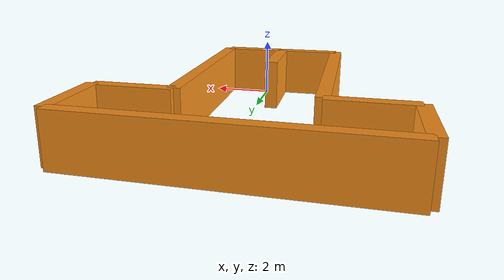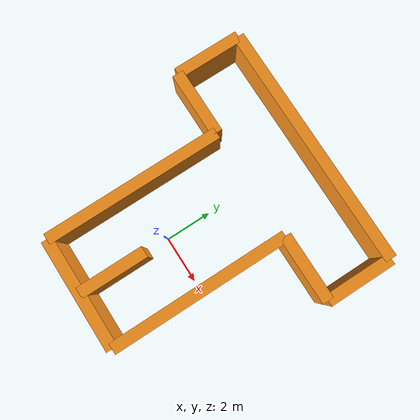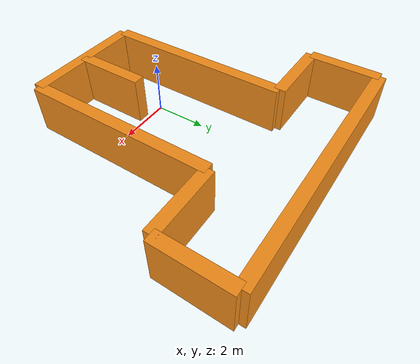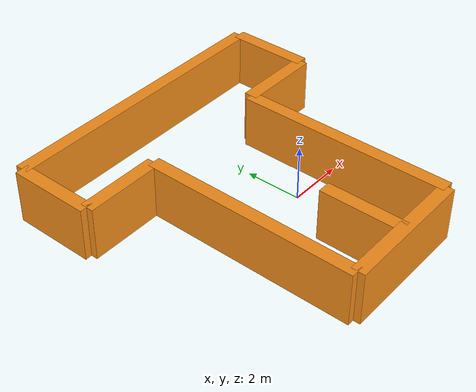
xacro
<?xml version="1.0"?>
<robot name="magabot" xmlns:xacro="http://www.ros.org/wiki/xacro">

  <xacro:property name="PI" value="3.14159"/>
  <xacro:property name="width" value="0.5"/>
  <xacro:property name="height" value="2.0"/>

  <!-- Wall Macro -->
  <xacro:macro name="wall" params="location length *origin">
		<link name="${location}_wall">
			<visual>
				<origin xyz="0 0 0"/>
				<geometry>
					<box size="${width} ${length} ${height}"/>
				</geometry>
				<material name="orange"/>
			</visual>

			<collision>
				<origin xyz="0 0 0"/>
				<geometry>
					<box size="${width} ${length} ${height}"/>
				</geometry>
			</collision>

			<inertial>
				<origin xyz="0 0 0"/>
				<mass value="1000"/>
				<inertia ixx="100.0" ixy="0.0" ixz="0.0" iyy="100.0" iyz="0.0" izz="100.0"/>
			</inertial>
		</link>

		<!-- Joint -->

		<joint name="${location}_joint" type="fixed">
			<parent link="base"/>
			<child link="${location}_wall"/>
			<axis xyz="1 0 0"/>
		  <insert_block name="origin" />
		</joint>

		<!-- Gazebo elements -->

		<gazebo reference="${location}_wall">
		  <material>Gazebo/Orange</material>
		</gazebo>
  </xacro:macro>

	<!-- Base link to parent all walls -->
	<link name="base"/>

	<!-- TOP ROOM -->

	<xacro:wall location="room_top" length="11">
		<origin xyz="0 7 0" rpy="0 0 ${PI/2}"/>
	</xacro:wall>

	<xacro:wall location="room_left" length="3">
		<origin xyz="-5.5 5.5 0" rpy="0 0 0"/>
	</xacro:wall>

	<xacro:wall location="room_right" length="3">
		<origin xyz="5.5 5.5 0" rpy="0 0 0"/>
	</xacro:wall>

	<xacro:wall location="room_bot_left" length="3">
		<origin xyz="-4 4 0" rpy="0 0 ${PI/2}"/>
	</xacro:wall>

	<xacro:wall location="room_bot_right" length="3">
		<origin xyz="4 4 0" rpy="0 0 ${PI/2}"/>
	</xacro:wall>

	<!-- HALLWAY -->

	<xacro:wall location="left" length="8">
		<origin xyz="-2.5 0 0" rpy="0 0 0"/>
	</xacro:wall>

	<xacro:wall location="right" length="8">
		<origin xyz="2.5 0 0" rpy="0 0 0"/>
	</xacro:wall>

	<xacro:wall location="bottom" length="5">
		<origin xyz="0 -4 0" rpy="0 0 ${PI/2}"/>
	</xacro:wall>

	<!-- BOTTOM SEPARATOR -->

	<xacro:wall location="center" length="3">
		<origin xyz="0 -2.5 0" rpy="0 0 0"/>
	</xacro:wall>

</robot>
